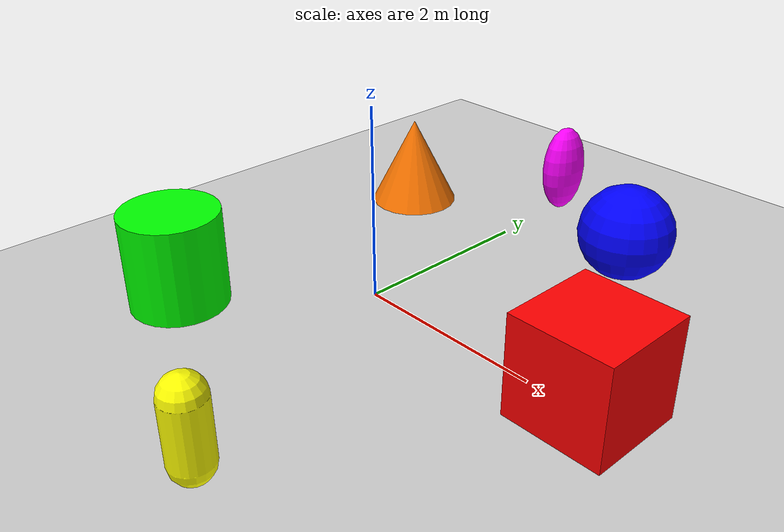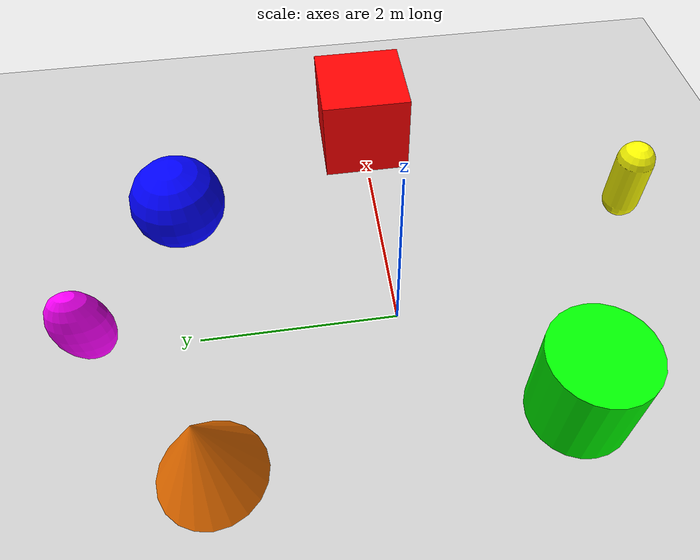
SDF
<sdf version='1.10'>
  <world name='shapes'>
    <plugin name='gz::sim::systems::Physics' filename='gz-sim-physics-system'/>
    <plugin name='gz::sim::systems::Sensors' filename='gz-sim-sensors-system'>
      <render_engine>ogre2</render_engine>
    </plugin>
    <plugin name='gz::sim::systems::UserCommands' filename='gz-sim-user-commands-system'/>
    <plugin name='gz::sim::systems::SceneBroadcaster' filename='gz-sim-scene-broadcaster-system'/>
    <scene>
      <ambient>1 1 1 1</ambient>
      <background>0.800000012 0.800000012 0.800000012 1</background>
      <shadows>true</shadows>
    </scene>
    <gravity>0 0 -9.8000000000000007</gravity>
    <magnetic_field>5.5644999999999998e-06 2.2875799999999999e-05 -4.2388400000000002e-05</magnetic_field>
    <atmosphere type='adiabatic'/>
    <model name='ground_plane'>
      <static>true</static>
      <link name='link'>
        <collision name='collision'>
          <geometry>
            <plane>
              <normal>0 0 1</normal>
              <size>100 100</size>
            </plane>
          </geometry>
          <surface>
            <friction>
              <ode/>
            </friction>
            <bounce/>
            <contact/>
          </surface>
        </collision>
        <visual name='visual'>
          <geometry>
            <plane>
              <normal>0 0 1</normal>
              <size>100 100</size>
            </plane>
          </geometry>
          <material>
            <ambient>0.800000012 0.800000012 0.800000012 1</ambient>
            <diffuse>0.800000012 0.800000012 0.800000012 1</diffuse>
            <specular>0.800000012 0.800000012 0.800000012 1</specular>
          </material>
        </visual>
        <pose>0 0 0 0 0 0</pose>
        <inertial>
          <pose>0 0 0 0 0 0</pose>
          <mass>1</mass>
          <inertia>
            <ixx>1</ixx>
            <ixy>0</ixy>
            <ixz>0</ixz>
            <iyy>1</iyy>
            <iyz>0</iyz>
            <izz>1</izz>
          </inertia>
        </inertial>
        <enable_wind>false</enable_wind>
      </link>
      <pose>0 0 0 0 0 0</pose>
      <self_collide>false</self_collide>
    </model>
    <model name='box'>
      <pose>2.6380894184112549 0 0.5 0 0 0</pose>
      <link name='box_link'>
        <inertial>
          <inertia>
            <ixx>0.16666</ixx>
            <ixy>0</ixy>
            <ixz>0</ixz>
            <iyy>0.16666</iyy>
            <iyz>0</iyz>
            <izz>0.16666</izz>
          </inertia>
          <mass>1</mass>
          <pose>0 0 0 0 0 0</pose>
        </inertial>
        <collision name='box_collision'>
          <geometry>
            <box>
              <size>1 1 1</size>
            </box>
          </geometry>
          <surface>
            <friction>
              <ode/>
            </friction>
            <bounce/>
            <contact/>
          </surface>
        </collision>
        <visual name='box_visual'>
          <geometry>
            <box>
              <size>1 1 1</size>
            </box>
          </geometry>
          <material>
            <ambient>1 0 0 1</ambient>
            <diffuse>1 0 0 1</diffuse>
            <specular>1 0 0 1</specular>
          </material>
        </visual>
        <pose>0 0 0 0 0 0</pose>
        <enable_wind>false</enable_wind>
      </link>
      <static>false</static>
      <self_collide>false</self_collide>
    </model>
    <model name='cylinder'>
      <pose>-1.2491347789764404 -1.5 0.5 0 0 0</pose>
      <link name='cylinder_link'>
        <inertial>
          <inertia>
            <ixx>0.14580000000000001</ixx>
            <ixy>0</ixy>
            <ixz>0</ixz>
            <iyy>0.14580000000000001</iyy>
            <iyz>0</iyz>
            <izz>0.125</izz>
          </inertia>
          <mass>1</mass>
          <pose>0 0 0 0 0 0</pose>
        </inertial>
        <collision name='cylinder_collision'>
          <geometry>
            <cylinder>
              <radius>0.5</radius>
              <length>1</length>
            </cylinder>
          </geometry>
          <surface>
            <friction>
              <ode/>
            </friction>
            <bounce/>
            <contact/>
          </surface>
        </collision>
        <visual name='cylinder_visual'>
          <geometry>
            <cylinder>
              <radius>0.5</radius>
              <length>1</length>
            </cylinder>
          </geometry>
          <material>
            <ambient>0 1 0 1</ambient>
            <diffuse>0 1 0 1</diffuse>
            <specular>0 1 0 1</specular>
          </material>
        </visual>
        <pose>0 0 0 0 0 0</pose>
        <enable_wind>false</enable_wind>
      </link>
      <static>false</static>
      <self_collide>false</self_collide>
    </model>
    <model name='sphere'>
      <pose>1.4698100090026855 2.1601791381835938 0.5 0 0 0</pose>
      <link name='sphere_link'>
        <inertial>
          <inertia>
            <ixx>0.10000000000000001</ixx>
            <ixy>0</ixy>
            <ixz>0</ixz>
            <iyy>0.10000000000000001</iyy>
            <iyz>0</iyz>
            <izz>0.10000000000000001</izz>
          </inertia>
          <mass>1</mass>
          <pose>0 0 0 0 0 0</pose>
        </inertial>
        <collision name='sphere_collision'>
          <geometry>
            <sphere>
              <radius>0.5</radius>
            </sphere>
          </geometry>
          <surface>
            <friction>
              <ode/>
            </friction>
            <bounce/>
            <contact/>
          </surface>
        </collision>
        <visual name='sphere_visual'>
          <geometry>
            <sphere>
              <radius>0.5</radius>
            </sphere>
          </geometry>
          <material>
            <ambient>0 0 1 1</ambient>
            <diffuse>0 0 1 1</diffuse>
            <specular>0 0 1 1</specular>
          </material>
        </visual>
        <pose>0 0 0 0 0 0</pose>
        <enable_wind>false</enable_wind>
      </link>
      <static>false</static>
      <self_collide>false</self_collide>
    </model>
    <model name='capsule'>
      <pose>1.0816199779510498 -2.7655386924743652 0.5 0 0 0</pose>
      <link name='capsule_link'>
        <inertial>
          <inertia>
            <ixx>0.074153999999999998</ixx>
            <ixy>0</ixy>
            <ixz>0</ixz>
            <iyy>0.074153999999999998</iyy>
            <iyz>0</iyz>
            <izz>0.018769000000000001</izz>
          </inertia>
          <mass>1</mass>
          <pose>0 0 0 0 0 0</pose>
        </inertial>
        <collision name='capsule_collision'>
          <geometry>
            <capsule>
              <radius>0.20000000000000001</radius>
              <length>0.59999999999999998</length>
            </capsule>
          </geometry>
          <surface>
            <friction>
              <ode/>
            </friction>
            <bounce/>
            <contact/>
          </surface>
        </collision>
        <visual name='capsule_visual'>
          <geometry>
            <capsule>
              <radius>0.20000000000000001</radius>
              <length>0.59999999999999998</length>
            </capsule>
          </geometry>
          <material>
            <ambient>1 1 0 1</ambient>
            <diffuse>1 1 0 1</diffuse>
            <specular>1 1 0 1</specular>
          </material>
        </visual>
        <pose>0 0 0 0 0 0</pose>
        <enable_wind>false</enable_wind>
      </link>
      <static>false</static>
      <self_collide>false</self_collide>
    </model>
    <model name='ellipsoid'>
      <pose>0 3 0.5 0 0 0</pose>
      <link name='ellipsoid_link'>
        <inertial>
          <inertia>
            <ixx>0.068000000000000005</ixx>
            <ixy>0</ixy>
            <ixz>0</ixz>
            <iyy>0.058000000000000003</iyy>
            <iyz>0</iyz>
            <izz>0.025999999999999999</izz>
          </inertia>
          <mass>1</mass>
          <pose>0 0 0 0 0 0</pose>
        </inertial>
        <collision name='ellipsoid_collision'>
          <geometry>
            <ellipsoid>
              <radii>0.20000000000000001 0.29999999999999999 0.5</radii>
            </ellipsoid>
          </geometry>
          <surface>
            <friction>
              <ode/>
            </friction>
            <bounce/>
            <contact/>
          </surface>
        </collision>
        <visual name='ellipsoid_visual'>
          <geometry>
            <ellipsoid>
              <radii>0.20000000000000001 0.29999999999999999 0.5</radii>
            </ellipsoid>
          </geometry>
          <material>
            <ambient>1 0 1 1</ambient>
            <diffuse>1 0 1 1</diffuse>
            <specular>1 0 1 1</specular>
          </material>
        </visual>
        <pose>0 0 0 0 0 0</pose>
        <enable_wind>false</enable_wind>
      </link>
      <static>false</static>
      <self_collide>false</self_collide>
    </model>
    <model name='cone'>
      <pose>-1.387470006942749 1.8743889331817627 0.5 0 0 0</pose>
      <link name='cone_link'>
        <inertial auto='true'>
          <density>1</density>
          <pose>0 0 -0.25 0 0 0</pose>
          <mass>0.26179938779914941</mass>
          <inertia>
            <ixx>0.019634954084936207</ixx>
            <ixy>0</ixy>
            <ixz>0</ixz>
            <iyy>0.019634954084936207</iyy>
            <iyz>0</iyz>
            <izz>0.019634954084936207</izz>
          </inertia>
        </inertial>
        <collision name='cone_collision'>
          <geometry>
            <cone>
              <radius>0.5</radius>
              <length>1</length>
            </cone>
          </geometry>
          <surface>
            <friction>
              <ode/>
            </friction>
            <bounce/>
            <contact/>
          </surface>
        </collision>
        <visual name='cone_visual'>
          <geometry>
            <cone>
              <radius>0.5</radius>
              <length>1</length>
            </cone>
          </geometry>
          <material>
            <ambient>1 0.469999999 0 1</ambient>
            <diffuse>1 0.469999999 0 1</diffuse>
            <specular>1 0.469999999 0 1</specular>
          </material>
        </visual>
        <pose>0 0 0 0 0 0</pose>
        <enable_wind>false</enable_wind>
      </link>
      <static>false</static>
      <self_collide>false</self_collide>
    </model>
    <light name='sun' type='directional'>
      <pose>0 0 10 0 0 0</pose>
      <cast_shadows>true</cast_shadows>
      <intensity>1</intensity>
      <direction>-0.5 0.10000000000000001 -0.90000000000000002</direction>
      <diffuse>0.800000012 0.800000012 0.800000012 1</diffuse>
      <specular>0.200000003 0.200000003 0.200000003 1</specular>
      <attenuation>
        <range>1000</range>
        <linear>0.01</linear>
        <constant>0.90000000000000002</constant>
        <quadratic>0.001</quadratic>
      </attenuation>
      <spot>
        <inner_angle>0</inner_angle>
        <outer_angle>0</outer_angle>
        <falloff>0</falloff>
      </spot>
    </light>
  </world>
</sdf>
